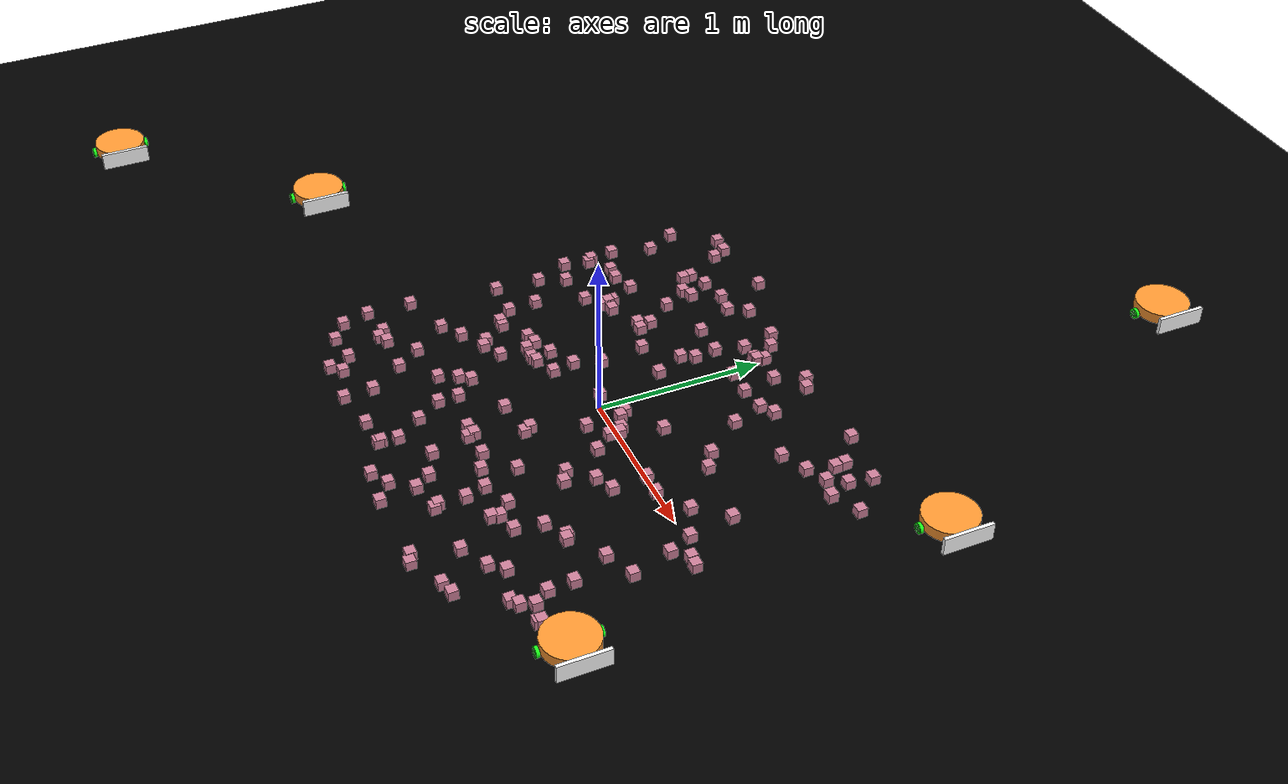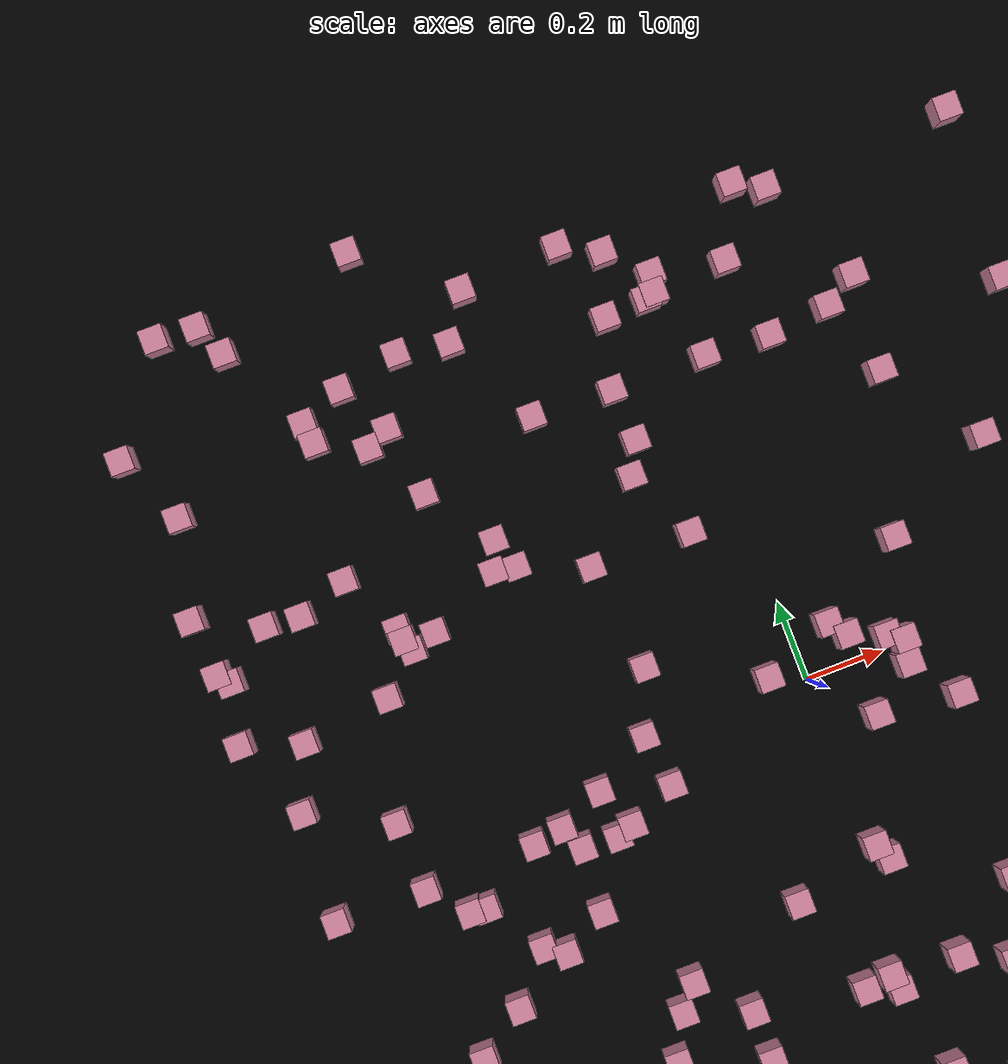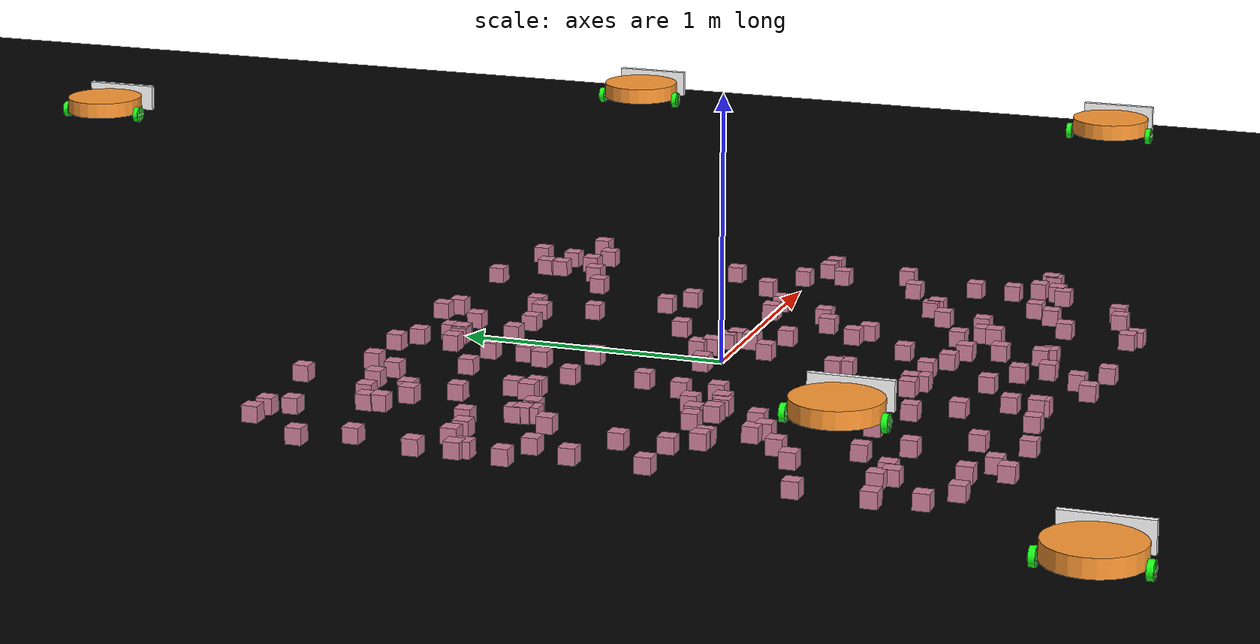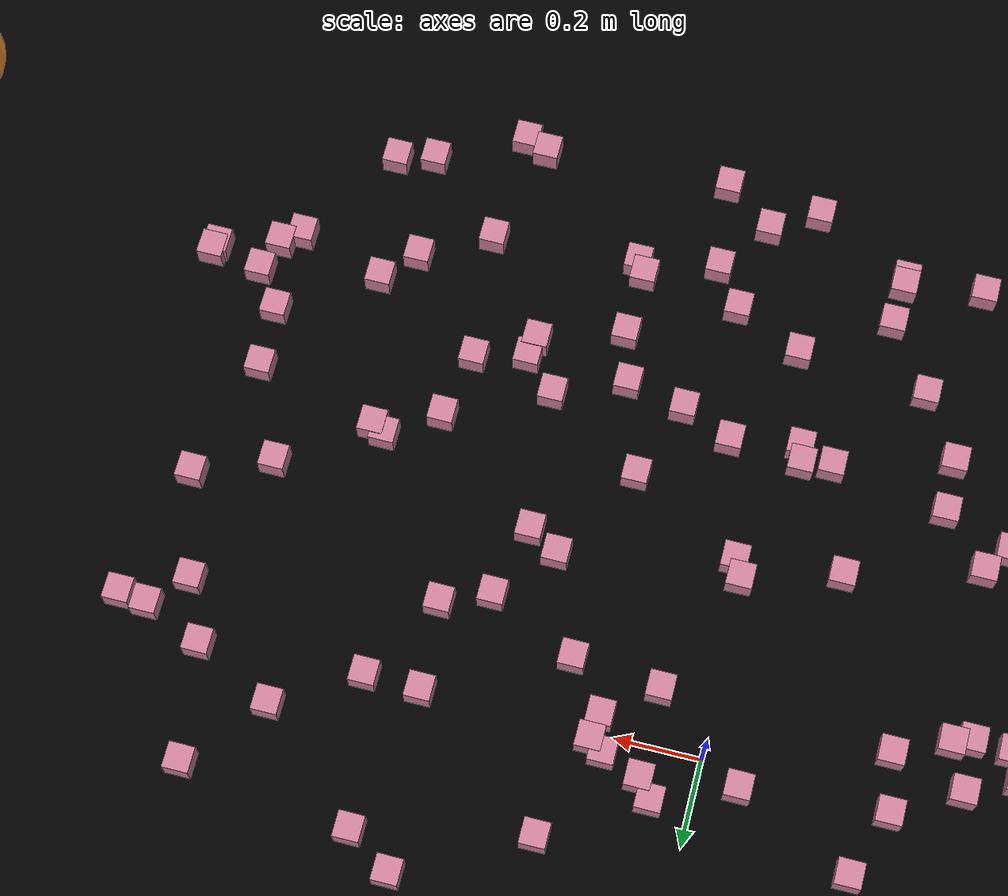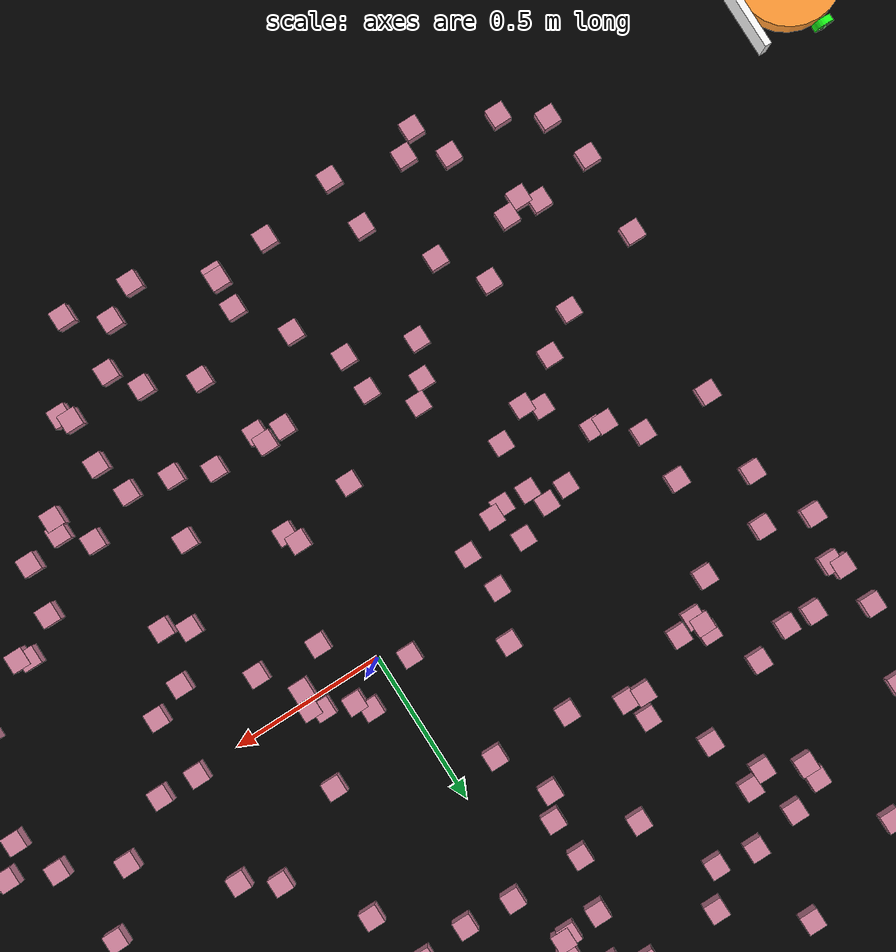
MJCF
<mujoco>
  <compiler meshdir="asset" texturedir="asset" angle="degree" coordinate="local"/>
  <option timestep="0.002" integrator="implicitfast"/>
  <statistic meansize=".05"/>

  <visual>
    <rgba haze="0.15 0.25 0.35 1"/>
    <quality shadowsize="4096"/>
    <map stiffness="700" shadowscale="0.5" fogstart="1" fogend="15" zfar="40" haze="1"/>
  </visual>

  <asset>
    <texture type="skybox" builtin="gradient" rgb1="0.3 0.5 0.7" rgb2="0 0 0" width="512" height="512"/>
    <texture name="texplane" type="2d" builtin="checker" rgb1="0 0 0" rgb2="0 0 0"
      width="512" height="512" mark="cross" markrgb=".8 .8 .8"/>

    <material name="matplane" reflectance="0.3" texture="texplane" texrepeat="10 10" texuniform="true"/>
  </asset>

  <default>
        <joint damping=".03" actuatorfrcrange="-0.5 0.5"/>
        <default class="wheel">
            <geom type="cylinder" size=".03 .01" rgba=".1 1 .1 1"/>
        </default>
        <default class="decor">
            <site type="box" rgba=".5 1 .5 1"/>
        </default>
    </default>

  <worldbody>

    <geom name="ground" type="plane" size="0 0 1" pos="0 0 0" quat="1 0 0 0" material="matplane" condim="1"/>
    <camera name="topdown" pos="0 0 6" quat="1 0 0 0"/>

<body name="p0" pos="1.3520758459381326 -0.04732788919101161 0.02401990644072447">
      <freejoint/>
      <geom type="box" size="0.03 0.03 0.03" rgba="0.8 0.5 0.6 1" friction="1.0 0.1 0.001" density="5"/>
</body>

<body name="p1" pos="-1.0469755028753134 1.2376404418347553 0.020262046734766045">
      <freejoint/>
      <geom type="box" size="0.03 0.03 0.03" rgba="0.8 0.5 0.6 1" friction="1.0 0.1 0.001" density="5"/>
</body>

<body name="p2" pos="0.24810336776359265 -1.377615655173521 0.02353353329639257">
      <freejoint/>
      <geom type="box" size="0.03 0.03 0.03" rgba="0.8 0.5 0.6 1" friction="1.0 0.1 0.001" density="5"/>
</body>

<body name="p3" pos="-0.9173659639547928 0.9577626226314799 0.02214945081027335">
      <freejoint/>
      <geom type="box" size="0.03 0.03 0.03" rgba="0.8 0.5 0.6 1" friction="1.0 0.1 0.001" density="5"/>
</body>

<body name="p4" pos="-0.7395138648239454 0.9288100893753177 0.022707890279324128">
      <freejoint/>
      <geom type="box" size="0.03 0.03 0.03" rgba="0.8 0.5 0.6 1" friction="1.0 0.1 0.001" density="5"/>
</body>

<body name="p5" pos="0.9319787653827394 0.8215369493460822 0.020507355073907562">
      <freejoint/>
      <geom type="box" size="0.03 0.03 0.03" rgba="0.8 0.5 0.6 1" friction="1.0 0.1 0.001" density="5"/>
</body>

<body name="p6" pos="0.7061131691423372 0.3415651235299839 0.02305474138545338">
      <freejoint/>
      <geom type="box" size="0.03 0.03 0.03" rgba="0.8 0.5 0.6 1" friction="1.0 0.1 0.001" density="5"/>
</body>

<body name="p7" pos="-0.6185077746938189 -0.747140996695655 0.020580576578912765">
      <freejoint/>
      <geom type="box" size="0.03 0.03 0.03" rgba="0.8 0.5 0.6 1" friction="1.0 0.1 0.001" density="5"/>
</body>

<body name="p8" pos="-0.21313981672049653 -0.49042070442456376 0.020534954985252655">
      <freejoint/>
      <geom type="box" size="0.03 0.03 0.03" rgba="0.8 0.5 0.6 1" friction="1.0 0.1 0.001" density="5"/>
</body>

<body name="p9" pos="0.15825335436490207 -1.0712547916193556 0.023139859429951448">
      <freejoint/>
      <geom type="box" size="0.03 0.03 0.03" rgba="0.8 0.5 0.6 1" friction="1.0 0.1 0.001" density="5"/>
</body>

<body name="p10" pos="-1.0483665875260182 -0.9136392935586979 0.02246640821833365">
      <freejoint/>
      <geom type="box" size="0.03 0.03 0.03" rgba="0.8 0.5 0.6 1" friction="1.0 0.1 0.001" density="5"/>
</body>

<body name="p11" pos="1.2036290807711434 -0.6564455190728428 0.021719298448065166">
      <freejoint/>
      <geom type="box" size="0.03 0.03 0.03" rgba="0.8 0.5 0.6 1" friction="1.0 0.1 0.001" density="5"/>
</body>

<body name="p12" pos="0.6397715625954148 0.0028545832510993296 0.02363661840180097">
      <freejoint/>
      <geom type="box" size="0.03 0.03 0.03" rgba="0.8 0.5 0.6 1" friction="1.0 0.1 0.001" density="5"/>
</body>

<body name="p13" pos="-0.04423531817942106 1.0032399466795434 0.020939361116398634">
      <freejoint/>
      <geom type="box" size="0.03 0.03 0.03" rgba="0.8 0.5 0.6 1" friction="1.0 0.1 0.001" density="5"/>
</body>

<body name="p14" pos="-1.1920480923883126 0.2882915175495875 0.021220947014544675">
      <freejoint/>
      <geom type="box" size="0.03 0.03 0.03" rgba="0.8 0.5 0.6 1" friction="1.0 0.1 0.001" density="5"/>
</body>

<body name="p15" pos="-0.055559819957493595 -0.7695382141904548 0.02044790825336219">
      <freejoint/>
      <geom type="box" size="0.03 0.03 0.03" rgba="0.8 0.5 0.6 1" friction="1.0 0.1 0.001" density="5"/>
</body>

<body name="p16" pos="-0.7984774638238574 0.8997788354015741 0.022737137488453938">
      <freejoint/>
      <geom type="box" size="0.03 0.03 0.03" rgba="0.8 0.5 0.6 1" friction="1.0 0.1 0.001" density="5"/>
</body>

<body name="p17" pos="-1.1080199780844169 -0.9440669967291945 0.020615308918786688">
      <freejoint/>
      <geom type="box" size="0.03 0.03 0.03" rgba="0.8 0.5 0.6 1" friction="1.0 0.1 0.001" density="5"/>
</body>

<body name="p18" pos="1.054165920389499 0.8771192869608928 0.024457687650487503">
      <freejoint/>
      <geom type="box" size="0.03 0.03 0.03" rgba="0.8 0.5 0.6 1" friction="1.0 0.1 0.001" density="5"/>
</body>

<body name="p19" pos="-0.8824567497988541 -1.2355105333319016 0.0248697113360095">
      <freejoint/>
      <geom type="box" size="0.03 0.03 0.03" rgba="0.8 0.5 0.6 1" friction="1.0 0.1 0.001" density="5"/>
</body>

<body name="p20" pos="1.2011910666815617 -1.00430619791252 0.022877280182495074">
      <freejoint/>
      <geom type="box" size="0.03 0.03 0.03" rgba="0.8 0.5 0.6 1" friction="1.0 0.1 0.001" density="5"/>
</body>

<body name="p21" pos="0.9932836443759085 -0.9404865469599772 0.023180388965646455">
      <freejoint/>
      <geom type="box" size="0.03 0.03 0.03" rgba="0.8 0.5 0.6 1" friction="1.0 0.1 0.001" density="5"/>
</body>

<body name="p22" pos="-0.6816214189922116 1.3602498535146208 0.022482689774057756">
      <freejoint/>
      <geom type="box" size="0.03 0.03 0.03" rgba="0.8 0.5 0.6 1" friction="1.0 0.1 0.001" density="5"/>
</body>

<body name="p23" pos="-0.19894505899537385 0.8248890996604814 0.024665362428502317">
      <freejoint/>
      <geom type="box" size="0.03 0.03 0.03" rgba="0.8 0.5 0.6 1" friction="1.0 0.1 0.001" density="5"/>
</body>

<body name="p24" pos="-0.8821818220999567 0.43689668903819623 0.021911887921835335">
      <freejoint/>
      <geom type="box" size="0.03 0.03 0.03" rgba="0.8 0.5 0.6 1" friction="1.0 0.1 0.001" density="5"/>
</body>

<body name="p25" pos="-0.9210588663763054 -0.23665480592829558 0.02202256553155752">
      <freejoint/>
      <geom type="box" size="0.03 0.03 0.03" rgba="0.8 0.5 0.6 1" friction="1.0 0.1 0.001" density="5"/>
</body>

<body name="p26" pos="0.4963954404482931 -0.4217740387062733 0.021454625672279907">
      <freejoint/>
      <geom type="box" size="0.03 0.03 0.03" rgba="0.8 0.5 0.6 1" friction="1.0 0.1 0.001" density="5"/>
</body>

<body name="p27" pos="1.0365956884315528 -1.2529913603416973 0.023896873568899135">
      <freejoint/>
      <geom type="box" size="0.03 0.03 0.03" rgba="0.8 0.5 0.6 1" friction="1.0 0.1 0.001" density="5"/>
</body>

<body name="p28" pos="-0.003130758951481738 -0.9970254663523004 0.0244352796927887">
      <freejoint/>
      <geom type="box" size="0.03 0.03 0.03" rgba="0.8 0.5 0.6 1" friction="1.0 0.1 0.001" density="5"/>
</body>

<body name="p29" pos="0.10576403592076722 -0.7447165690392866 0.0234821562287058">
      <freejoint/>
      <geom type="box" size="0.03 0.03 0.03" rgba="0.8 0.5 0.6 1" friction="1.0 0.1 0.001" density="5"/>
</body>

<body name="p30" pos="1.1060144154238665 0.2884439982935203 0.02466292541224984">
      <freejoint/>
      <geom type="box" size="0.03 0.03 0.03" rgba="0.8 0.5 0.6 1" friction="1.0 0.1 0.001" density="5"/>
</body>

<body name="p31" pos="0.606175506084552 -0.8310580227211694 0.02069170600942174">
      <freejoint/>
      <geom type="box" size="0.03 0.03 0.03" rgba="0.8 0.5 0.6 1" friction="1.0 0.1 0.001" density="5"/>
</body>

<body name="p32" pos="-0.5656274180453253 -0.1872367681968803 0.02154448332988449">
      <freejoint/>
      <geom type="box" size="0.03 0.03 0.03" rgba="0.8 0.5 0.6 1" friction="1.0 0.1 0.001" density="5"/>
</body>

<body name="p33" pos="0.8793502370659532 -0.5620555093596681 0.020950944790977193">
      <freejoint/>
      <geom type="box" size="0.03 0.03 0.03" rgba="0.8 0.5 0.6 1" friction="1.0 0.1 0.001" density="5"/>
</body>

<body name="p34" pos="-0.14259041926600324 0.43793649888824193 0.024278312861324314">
      <freejoint/>
      <geom type="box" size="0.03 0.03 0.03" rgba="0.8 0.5 0.6 1" friction="1.0 0.1 0.001" density="5"/>
</body>

<body name="p35" pos="0.9750261852319855 0.9773605224599717 0.020090969261094434">
      <freejoint/>
      <geom type="box" size="0.03 0.03 0.03" rgba="0.8 0.5 0.6 1" friction="1.0 0.1 0.001" density="5"/>
</body>

<body name="p36" pos="-0.6209734082804605 0.5164857216529104 0.023137436501803485">
      <freejoint/>
      <geom type="box" size="0.03 0.03 0.03" rgba="0.8 0.5 0.6 1" friction="1.0 0.1 0.001" density="5"/>
</body>

<body name="p37" pos="-0.40536154521731216 -0.8196853764375884 0.023301483585067877">
      <freejoint/>
      <geom type="box" size="0.03 0.03 0.03" rgba="0.8 0.5 0.6 1" friction="1.0 0.1 0.001" density="5"/>
</body>

<body name="p38" pos="0.9481024556060653 -1.2766314752689023 0.020751224053919614">
      <freejoint/>
      <geom type="box" size="0.03 0.03 0.03" rgba="0.8 0.5 0.6 1" friction="1.0 0.1 0.001" density="5"/>
</body>

<body name="p39" pos="-0.6838095571340841 -0.12035038317909175 0.02496987856289289">
      <freejoint/>
      <geom type="box" size="0.03 0.03 0.03" rgba="0.8 0.5 0.6 1" friction="1.0 0.1 0.001" density="5"/>
</body>

<body name="p40" pos="-0.9242193730819828 1.0112975018874182 0.02024521249937858">
      <freejoint/>
      <geom type="box" size="0.03 0.03 0.03" rgba="0.8 0.5 0.6 1" friction="1.0 0.1 0.001" density="5"/>
</body>

<body name="p41" pos="-0.6641345619235632 -0.34434783905270705 0.02100997034461025">
      <freejoint/>
      <geom type="box" size="0.03 0.03 0.03" rgba="0.8 0.5 0.6 1" friction="1.0 0.1 0.001" density="5"/>
</body>

<body name="p42" pos="0.39227287006044564 -1.1011212966957817 0.02201242134206593">
      <freejoint/>
      <geom type="box" size="0.03 0.03 0.03" rgba="0.8 0.5 0.6 1" friction="1.0 0.1 0.001" density="5"/>
</body>

<body name="p43" pos="0.2242903048868632 -1.1648918337266023 0.023548715285064345">
      <freejoint/>
      <geom type="box" size="0.03 0.03 0.03" rgba="0.8 0.5 0.6 1" friction="1.0 0.1 0.001" density="5"/>
</body>

<body name="p44" pos="-1.1837858328109043 0.5858894606696856 0.02122710493879327">
      <freejoint/>
      <geom type="box" size="0.03 0.03 0.03" rgba="0.8 0.5 0.6 1" friction="1.0 0.1 0.001" density="5"/>
</body>

<body name="p45" pos="-0.8139842746913766 1.057823604432615 0.020999668298464117">
      <freejoint/>
      <geom type="box" size="0.03 0.03 0.03" rgba="0.8 0.5 0.6 1" friction="1.0 0.1 0.001" density="5"/>
</body>

<body name="p46" pos="-0.5265093782666651 1.0694702554694775 0.020422858572196178">
      <freejoint/>
      <geom type="box" size="0.03 0.03 0.03" rgba="0.8 0.5 0.6 1" friction="1.0 0.1 0.001" density="5"/>
</body>

<body name="p47" pos="0.3299150210521806 -0.15342332902348654 0.022936225239283504">
      <freejoint/>
      <geom type="box" size="0.03 0.03 0.03" rgba="0.8 0.5 0.6 1" friction="1.0 0.1 0.001" density="5"/>
</body>

<body name="p48" pos="0.36048818044044495 0.8337901717167564 0.021614144506520053">
      <freejoint/>
      <geom type="box" size="0.03 0.03 0.03" rgba="0.8 0.5 0.6 1" friction="1.0 0.1 0.001" density="5"/>
</body>

<body name="p49" pos="-1.2868235652896591 0.9039058230271655 0.020163622517139032">
      <freejoint/>
      <geom type="box" size="0.03 0.03 0.03" rgba="0.8 0.5 0.6 1" friction="1.0 0.1 0.001" density="5"/>
</body>

<body name="p50" pos="-1.0536290781347246 -0.5747633467565274 0.0227200808716578">
      <freejoint/>
      <geom type="box" size="0.03 0.03 0.03" rgba="0.8 0.5 0.6 1" friction="1.0 0.1 0.001" density="5"/>
</body>

<body name="p51" pos="0.7285172112964271 -0.8004392526450885 0.022735382461005628">
      <freejoint/>
      <geom type="box" size="0.03 0.03 0.03" rgba="0.8 0.5 0.6 1" friction="1.0 0.1 0.001" density="5"/>
</body>

<body name="p52" pos="-0.3965318084065288 0.4424872746224757 0.02285898099228139">
      <freejoint/>
      <geom type="box" size="0.03 0.03 0.03" rgba="0.8 0.5 0.6 1" friction="1.0 0.1 0.001" density="5"/>
</body>

<body name="p53" pos="-1.1561608935507013 -0.9028966479067895 0.020236364333591796">
      <freejoint/>
      <geom type="box" size="0.03 0.03 0.03" rgba="0.8 0.5 0.6 1" friction="1.0 0.1 0.001" density="5"/>
</body>

<body name="p54" pos="0.9571728956281245 0.11517046297729294 0.02164627725848612">
      <freejoint/>
      <geom type="box" size="0.03 0.03 0.03" rgba="0.8 0.5 0.6 1" friction="1.0 0.1 0.001" density="5"/>
</body>

<body name="p55" pos="0.16685911543917364 1.0231290415579193 0.020133561253097742">
      <freejoint/>
      <geom type="box" size="0.03 0.03 0.03" rgba="0.8 0.5 0.6 1" friction="1.0 0.1 0.001" density="5"/>
</body>

<body name="p56" pos="-1.3319897391342472 0.5155442122991989 0.024329864692093046">
      <freejoint/>
      <geom type="box" size="0.03 0.03 0.03" rgba="0.8 0.5 0.6 1" friction="1.0 0.1 0.001" density="5"/>
</body>

<body name="p57" pos="0.7778276607999217 0.7506587241022569 0.021153491997115383">
      <freejoint/>
      <geom type="box" size="0.03 0.03 0.03" rgba="0.8 0.5 0.6 1" friction="1.0 0.1 0.001" density="5"/>
</body>

<body name="p58" pos="-0.01251392287838371 1.0551081930196116 0.021179659932213244">
      <freejoint/>
      <geom type="box" size="0.03 0.03 0.03" rgba="0.8 0.5 0.6 1" friction="1.0 0.1 0.001" density="5"/>
</body>

<body name="p59" pos="-1.3414940016142203 -0.6706092130829373 0.02385113844661847">
      <freejoint/>
      <geom type="box" size="0.03 0.03 0.03" rgba="0.8 0.5 0.6 1" friction="1.0 0.1 0.001" density="5"/>
</body>

<body name="p60" pos="-0.1881242827291123 0.6924143688401005 0.02050225099126551">
      <freejoint/>
      <geom type="box" size="0.03 0.03 0.03" rgba="0.8 0.5 0.6 1" friction="1.0 0.1 0.001" density="5"/>
</body>

<body name="p61" pos="-0.8855262552723723 0.4683045972960449 0.02095350848421523">
      <freejoint/>
      <geom type="box" size="0.03 0.03 0.03" rgba="0.8 0.5 0.6 1" friction="1.0 0.1 0.001" density="5"/>
</body>

<body name="p62" pos="0.4127846816086831 -1.1289118644770615 0.021675425768295238">
      <freejoint/>
      <geom type="box" size="0.03 0.03 0.03" rgba="0.8 0.5 0.6 1" friction="1.0 0.1 0.001" density="5"/>
</body>

<body name="p63" pos="-1.271156112034965 -0.14071168441555337 0.024912756307324327">
      <freejoint/>
      <geom type="box" size="0.03 0.03 0.03" rgba="0.8 0.5 0.6 1" friction="1.0 0.1 0.001" density="5"/>
</body>

<body name="p64" pos="0.02009148310665476 -1.3555910126911423 0.022994678087937846">
      <freejoint/>
      <geom type="box" size="0.03 0.03 0.03" rgba="0.8 0.5 0.6 1" friction="1.0 0.1 0.001" density="5"/>
</body>

<body name="p65" pos="0.12503842399978415 0.07530794104598937 0.023278906193772538">
      <freejoint/>
      <geom type="box" size="0.03 0.03 0.03" rgba="0.8 0.5 0.6 1" friction="1.0 0.1 0.001" density="5"/>
</body>

<body name="p66" pos="0.03046486245297797 -0.4655642353424071 0.021468540155364896">
      <freejoint/>
      <geom type="box" size="0.03 0.03 0.03" rgba="0.8 0.5 0.6 1" friction="1.0 0.1 0.001" density="5"/>
</body>

<body name="p67" pos="0.6917142925093787 -1.357661309593987 0.02429041663855109">
      <freejoint/>
      <geom type="box" size="0.03 0.03 0.03" rgba="0.8 0.5 0.6 1" friction="1.0 0.1 0.001" density="5"/>
</body>

<body name="p68" pos="-0.8041295647464497 0.4291943958762703 0.023011313315112834">
      <freejoint/>
      <geom type="box" size="0.03 0.03 0.03" rgba="0.8 0.5 0.6 1" friction="1.0 0.1 0.001" density="5"/>
</body>

<body name="p69" pos="-0.10448626763358893 1.144862989748988 0.021123613315083813">
      <freejoint/>
      <geom type="box" size="0.03 0.03 0.03" rgba="0.8 0.5 0.6 1" friction="1.0 0.1 0.001" density="5"/>
</body>

<body name="p70" pos="0.4260895234210882 0.6427038927105313 0.020019247346729347">
      <freejoint/>
      <geom type="box" size="0.03 0.03 0.03" rgba="0.8 0.5 0.6 1" friction="1.0 0.1 0.001" density="5"/>
</body>

<body name="p71" pos="-0.2271019126403273 0.6142539175167512 0.021021022302036018">
      <freejoint/>
      <geom type="box" size="0.03 0.03 0.03" rgba="0.8 0.5 0.6 1" friction="1.0 0.1 0.001" density="5"/>
</body>

<body name="p72" pos="-1.366655227674001 1.0807694908832506 0.02417322412062151">
      <freejoint/>
      <geom type="box" size="0.03 0.03 0.03" rgba="0.8 0.5 0.6 1" friction="1.0 0.1 0.001" density="5"/>
</body>

<body name="p73" pos="0.7473077569951894 -1.378742998320895 0.020379409169113894">
      <freejoint/>
      <geom type="box" size="0.03 0.03 0.03" rgba="0.8 0.5 0.6 1" friction="1.0 0.1 0.001" density="5"/>
</body>

<body name="p74" pos="-1.0944021219327156 0.5781316458751817 0.021525235018107092">
      <freejoint/>
      <geom type="box" size="0.03 0.03 0.03" rgba="0.8 0.5 0.6 1" friction="1.0 0.1 0.001" density="5"/>
</body>

<body name="p75" pos="-0.518592726205364 -0.5789791351966431 0.023546562272350382">
      <freejoint/>
      <geom type="box" size="0.03 0.03 0.03" rgba="0.8 0.5 0.6 1" friction="1.0 0.1 0.001" density="5"/>
</body>

<body name="p76" pos="-0.56721197871398 -0.6383950645644855 0.021511560144293857">
      <freejoint/>
      <geom type="box" size="0.03 0.03 0.03" rgba="0.8 0.5 0.6 1" friction="1.0 0.1 0.001" density="5"/>
</body>

<body name="p77" pos="0.6515004869513557 -0.20435391157452876 0.022562341292128724">
      <freejoint/>
      <geom type="box" size="0.03 0.03 0.03" rgba="0.8 0.5 0.6 1" friction="1.0 0.1 0.001" density="5"/>
</body>

<body name="p78" pos="0.13011448744618703 -1.2921062249364832 0.023553401981857302">
      <freejoint/>
      <geom type="box" size="0.03 0.03 0.03" rgba="0.8 0.5 0.6 1" friction="1.0 0.1 0.001" density="5"/>
</body>

<body name="p79" pos="-1.0848290675229224 1.3187748956844145 0.022267054387113436">
      <freejoint/>
      <geom type="box" size="0.03 0.03 0.03" rgba="0.8 0.5 0.6 1" friction="1.0 0.1 0.001" density="5"/>
</body>

<body name="p80" pos="-0.8700185423520083 0.4075287754853558 0.020642299205081274">
      <freejoint/>
      <geom type="box" size="0.03 0.03 0.03" rgba="0.8 0.5 0.6 1" friction="1.0 0.1 0.001" density="5"/>
</body>

<body name="p81" pos="-0.7776830288642768 -0.40655731117548943 0.021311149717743217">
      <freejoint/>
      <geom type="box" size="0.03 0.03 0.03" rgba="0.8 0.5 0.6 1" friction="1.0 0.1 0.001" density="5"/>
</body>

<body name="p82" pos="0.5398846522123826 -0.25133273753918495 0.022455409340185778">
      <freejoint/>
      <geom type="box" size="0.03 0.03 0.03" rgba="0.8 0.5 0.6 1" friction="1.0 0.1 0.001" density="5"/>
</body>

<body name="p83" pos="0.24501968341831093 1.1908456439070871 0.023025583996417614">
      <freejoint/>
      <geom type="box" size="0.03 0.03 0.03" rgba="0.8 0.5 0.6 1" friction="1.0 0.1 0.001" density="5"/>
</body>

<body name="p84" pos="-0.20141690885832952 -1.1255219651968653 0.02085980371788335">
      <freejoint/>
      <geom type="box" size="0.03 0.03 0.03" rgba="0.8 0.5 0.6 1" friction="1.0 0.1 0.001" density="5"/>
</body>

<body name="p85" pos="0.9204127437123524 -1.0193914147367193 0.022679290604765236">
      <freejoint/>
      <geom type="box" size="0.03 0.03 0.03" rgba="0.8 0.5 0.6 1" friction="1.0 0.1 0.001" density="5"/>
</body>

<body name="p86" pos="0.759439190885514 -1.1072235374169639 0.023970098366760152">
      <freejoint/>
      <geom type="box" size="0.03 0.03 0.03" rgba="0.8 0.5 0.6 1" friction="1.0 0.1 0.001" density="5"/>
</body>

<body name="p87" pos="-1.189641717524989 -1.1882748061421373 0.020326298595288245">
      <freejoint/>
      <geom type="box" size="0.03 0.03 0.03" rgba="0.8 0.5 0.6 1" friction="1.0 0.1 0.001" density="5"/>
</body>

<body name="p88" pos="-0.42066011894181166 0.016291935249831413 0.022746104883576927">
      <freejoint/>
      <geom type="box" size="0.03 0.03 0.03" rgba="0.8 0.5 0.6 1" friction="1.0 0.1 0.001" density="5"/>
</body>

<body name="p89" pos="-1.3130599641589058 -1.1008235294944821 0.022051006822056046">
      <freejoint/>
      <geom type="box" size="0.03 0.03 0.03" rgba="0.8 0.5 0.6 1" friction="1.0 0.1 0.001" density="5"/>
</body>

<body name="p90" pos="-0.2079978217598355 -1.2409069323205941 0.023844034801585076">
      <freejoint/>
      <geom type="box" size="0.03 0.03 0.03" rgba="0.8 0.5 0.6 1" friction="1.0 0.1 0.001" density="5"/>
</body>

<body name="p91" pos="-1.0007526437942538 -1.1656236346026618 0.023187338216808538">
      <freejoint/>
      <geom type="box" size="0.03 0.03 0.03" rgba="0.8 0.5 0.6 1" friction="1.0 0.1 0.001" density="5"/>
</body>

<body name="p92" pos="-0.9615122298993648 -0.23240386562167026 0.023744577760981832">
      <freejoint/>
      <geom type="box" size="0.03 0.03 0.03" rgba="0.8 0.5 0.6 1" friction="1.0 0.1 0.001" density="5"/>
</body>

<body name="p93" pos="-0.9665589633928799 0.6219620288928072 0.020240108105565754">
      <freejoint/>
      <geom type="box" size="0.03 0.03 0.03" rgba="0.8 0.5 0.6 1" friction="1.0 0.1 0.001" density="5"/>
</body>

<body name="p94" pos="-1.2570404467586982 0.13225491098973396 0.022338040379590324">
      <freejoint/>
      <geom type="box" size="0.03 0.03 0.03" rgba="0.8 0.5 0.6 1" friction="1.0 0.1 0.001" density="5"/>
</body>

<body name="p95" pos="-0.3999313865572731 -0.11704081699148006 0.020570700765939656">
      <freejoint/>
      <geom type="box" size="0.03 0.03 0.03" rgba="0.8 0.5 0.6 1" friction="1.0 0.1 0.001" density="5"/>
</body>

<body name="p96" pos="0.7609712620020987 -0.6413363169866992 0.02477400663439214">
      <freejoint/>
      <geom type="box" size="0.03 0.03 0.03" rgba="0.8 0.5 0.6 1" friction="1.0 0.1 0.001" density="5"/>
</body>

<body name="p97" pos="0.5967406300864093 -0.8780137236006988 0.023396838644315392">
      <freejoint/>
      <geom type="box" size="0.03 0.03 0.03" rgba="0.8 0.5 0.6 1" friction="1.0 0.1 0.001" density="5"/>
</body>

<body name="p98" pos="-0.9474664920104128 -1.2944173455354586 0.022118109271533765">
      <freejoint/>
      <geom type="box" size="0.03 0.03 0.03" rgba="0.8 0.5 0.6 1" friction="1.0 0.1 0.001" density="5"/>
</body>

<body name="p99" pos="-1.308609156162489 0.4885067194401267 0.022642286689122756">
      <freejoint/>
      <geom type="box" size="0.03 0.03 0.03" rgba="0.8 0.5 0.6 1" friction="1.0 0.1 0.001" density="5"/>
</body>

<body name="p100" pos="-0.5225618585044711 -0.17249218436961522 0.023645260046423408">
      <freejoint/>
      <geom type="box" size="0.03 0.03 0.03" rgba="0.8 0.5 0.6 1" friction="1.0 0.1 0.001" density="5"/>
</body>

<body name="p101" pos="-0.3110521847592562 -0.9686377358775896 0.020286861723029643">
      <freejoint/>
      <geom type="box" size="0.03 0.03 0.03" rgba="0.8 0.5 0.6 1" friction="1.0 0.1 0.001" density="5"/>
</body>

<body name="p102" pos="-0.7115387727835089 0.7497620010935422 0.02307488557506323">
      <freejoint/>
      <geom type="box" size="0.03 0.03 0.03" rgba="0.8 0.5 0.6 1" friction="1.0 0.1 0.001" density="5"/>
</body>

<body name="p103" pos="-1.1883272715624118 1.3259222330916223 0.023718873798714894">
      <freejoint/>
      <geom type="box" size="0.03 0.03 0.03" rgba="0.8 0.5 0.6 1" friction="1.0 0.1 0.001" density="5"/>
</body>

<body name="p104" pos="-0.20229293326332742 1.1974581558669692 0.02192684701232126">
      <freejoint/>
      <geom type="box" size="0.03 0.03 0.03" rgba="0.8 0.5 0.6 1" friction="1.0 0.1 0.001" density="5"/>
</body>

<body name="p105" pos="-0.5647622599893155 0.5077691669266753 0.021452841817855253">
      <freejoint/>
      <geom type="box" size="0.03 0.03 0.03" rgba="0.8 0.5 0.6 1" friction="1.0 0.1 0.001" density="5"/>
</body>

<body name="p106" pos="0.009428058856914001 -0.4242234679322051 0.024105361458973747">
      <freejoint/>
      <geom type="box" size="0.03 0.03 0.03" rgba="0.8 0.5 0.6 1" friction="1.0 0.1 0.001" density="5"/>
</body>

<body name="p107" pos="-1.0521724935907468 0.02993662425650001 0.024662501419342068">
      <freejoint/>
      <geom type="box" size="0.03 0.03 0.03" rgba="0.8 0.5 0.6 1" friction="1.0 0.1 0.001" density="5"/>
</body>

<body name="p108" pos="0.040860015168888486 0.8259134074538008 0.022945727521165464">
      <freejoint/>
      <geom type="box" size="0.03 0.03 0.03" rgba="0.8 0.5 0.6 1" friction="1.0 0.1 0.001" density="5"/>
</body>

<body name="p109" pos="1.2101858950769806 -0.8040649865477275 0.02130559935314895">
      <freejoint/>
      <geom type="box" size="0.03 0.03 0.03" rgba="0.8 0.5 0.6 1" friction="1.0 0.1 0.001" density="5"/>
</body>

<body name="p110" pos="-0.9660364826663722 0.32050497296920355 0.023781553900809382">
      <freejoint/>
      <geom type="box" size="0.03 0.03 0.03" rgba="0.8 0.5 0.6 1" friction="1.0 0.1 0.001" density="5"/>
</body>

<body name="p111" pos="1.3955096859401972 -0.9110622552972465 0.023987516212787285">
      <freejoint/>
      <geom type="box" size="0.03 0.03 0.03" rgba="0.8 0.5 0.6 1" friction="1.0 0.1 0.001" density="5"/>
</body>

<body name="p112" pos="0.31878050623906695 1.1539777899685548 0.021496841412417513">
      <freejoint/>
      <geom type="box" size="0.03 0.03 0.03" rgba="0.8 0.5 0.6 1" friction="1.0 0.1 0.001" density="5"/>
</body>

<body name="p113" pos="-1.3514975664654676 -0.9374492175996205 0.02347429145836582">
      <freejoint/>
      <geom type="box" size="0.03 0.03 0.03" rgba="0.8 0.5 0.6 1" friction="1.0 0.1 0.001" density="5"/>
</body>

<body name="p114" pos="0.12462299255988185 -0.13135217391242526 0.02442362363134433">
      <freejoint/>
      <geom type="box" size="0.03 0.03 0.03" rgba="0.8 0.5 0.6 1" friction="1.0 0.1 0.001" density="5"/>
</body>

<body name="p115" pos="-0.8263558536647377 -0.3738176728055813 0.021184171173878354">
      <freejoint/>
      <geom type="box" size="0.03 0.03 0.03" rgba="0.8 0.5 0.6 1" friction="1.0 0.1 0.001" density="5"/>
</body>

<body name="p116" pos="-0.930609405628017 -0.49082351712379124 0.022370151666929933">
      <freejoint/>
      <geom type="box" size="0.03 0.03 0.03" rgba="0.8 0.5 0.6 1" friction="1.0 0.1 0.001" density="5"/>
</body>

<body name="p117" pos="0.09157397796074163 0.11725861715772656 0.020555227151642375">
      <freejoint/>
      <geom type="box" size="0.03 0.03 0.03" rgba="0.8 0.5 0.6 1" friction="1.0 0.1 0.001" density="5"/>
</body>

<body name="p118" pos="-0.5682100065258002 -0.06920284769754725 0.023765090029639547">
      <freejoint/>
      <geom type="box" size="0.03 0.03 0.03" rgba="0.8 0.5 0.6 1" friction="1.0 0.1 0.001" density="5"/>
</body>

<body name="p119" pos="0.24959861727809374 0.017352521361159834 0.02295719956468112">
      <freejoint/>
      <geom type="box" size="0.03 0.03 0.03" rgba="0.8 0.5 0.6 1" friction="1.0 0.1 0.001" density="5"/>
</body>

<body name="p120" pos="0.31338512999727475 0.25575350219173676 0.02261531295954236">
      <freejoint/>
      <geom type="box" size="0.03 0.03 0.03" rgba="0.8 0.5 0.6 1" friction="1.0 0.1 0.001" density="5"/>
</body>

<body name="p121" pos="-0.13542214100632588 -0.7407435569742824 0.021650695017150407">
      <freejoint/>
      <geom type="box" size="0.03 0.03 0.03" rgba="0.8 0.5 0.6 1" friction="1.0 0.1 0.001" density="5"/>
</body>

<body name="p122" pos="0.2945383518605609 -0.6104600472962537 0.020763941963766203">
      <freejoint/>
      <geom type="box" size="0.03 0.03 0.03" rgba="0.8 0.5 0.6 1" friction="1.0 0.1 0.001" density="5"/>
</body>

<body name="p123" pos="0.3651320002100109 -0.825438320345119 0.02219151587108501">
      <freejoint/>
      <geom type="box" size="0.03 0.03 0.03" rgba="0.8 0.5 0.6 1" friction="1.0 0.1 0.001" density="5"/>
</body>

<body name="p124" pos="1.273330517445586 -0.892693949176167 0.02235498317958426">
      <freejoint/>
      <geom type="box" size="0.03 0.03 0.03" rgba="0.8 0.5 0.6 1" friction="1.0 0.1 0.001" density="5"/>
</body>

<body name="p125" pos="0.20422689625863022 0.8162213470010418 0.020125807002060316">
      <freejoint/>
      <geom type="box" size="0.03 0.03 0.03" rgba="0.8 0.5 0.6 1" friction="1.0 0.1 0.001" density="5"/>
</body>

<body name="p126" pos="0.4427263235682335 0.8824054631257168 0.021955861886548612">
      <freejoint/>
      <geom type="box" size="0.03 0.03 0.03" rgba="0.8 0.5 0.6 1" friction="1.0 0.1 0.001" density="5"/>
</body>

<body name="p127" pos="1.1046533902660047 -0.43646533229911755 0.024314421536604243">
      <freejoint/>
      <geom type="box" size="0.03 0.03 0.03" rgba="0.8 0.5 0.6 1" friction="1.0 0.1 0.001" density="5"/>
</body>

<body name="p128" pos="0.9714193308595798 1.0397612838970534 0.021103020484562113">
      <freejoint/>
      <geom type="box" size="0.03 0.03 0.03" rgba="0.8 0.5 0.6 1" friction="1.0 0.1 0.001" density="5"/>
</body>

<body name="p129" pos="-0.6557716352705206 1.0904186931913817 0.021782373535050376">
      <freejoint/>
      <geom type="box" size="0.03 0.03 0.03" rgba="0.8 0.5 0.6 1" friction="1.0 0.1 0.001" density="5"/>
</body>

<body name="p130" pos="0.2254909210297873 -0.7954838254027086 0.02431486384665505">
      <freejoint/>
      <geom type="box" size="0.03 0.03 0.03" rgba="0.8 0.5 0.6 1" friction="1.0 0.1 0.001" density="5"/>
</body>

<body name="p131" pos="1.1722395485162314 0.8438576953461108 0.02260510678979915">
      <freejoint/>
      <geom type="box" size="0.03 0.03 0.03" rgba="0.8 0.5 0.6 1" friction="1.0 0.1 0.001" density="5"/>
</body>

<body name="p132" pos="-0.6610672926803416 -1.1247297761470247 0.02464880379100251">
      <freejoint/>
      <geom type="box" size="0.03 0.03 0.03" rgba="0.8 0.5 0.6 1" friction="1.0 0.1 0.001" density="5"/>
</body>

<body name="p133" pos="1.3893794414913567 -0.9272394708041956 0.02133813837640944">
      <freejoint/>
      <geom type="box" size="0.03 0.03 0.03" rgba="0.8 0.5 0.6 1" friction="1.0 0.1 0.001" density="5"/>
</body>

<body name="p134" pos="-1.3414038050656243 0.33882049024728134 0.023628148180498822">
      <freejoint/>
      <geom type="box" size="0.03 0.03 0.03" rgba="0.8 0.5 0.6 1" friction="1.0 0.1 0.001" density="5"/>
</body>

<body name="p135" pos="0.5287358525080694 -0.7558868837831735 0.022122309030149973">
      <freejoint/>
      <geom type="box" size="0.03 0.03 0.03" rgba="0.8 0.5 0.6 1" friction="1.0 0.1 0.001" density="5"/>
</body>

<body name="p136" pos="-0.09030270139118435 0.04340074769965829 0.024560010942226387">
      <freejoint/>
      <geom type="box" size="0.03 0.03 0.03" rgba="0.8 0.5 0.6 1" friction="1.0 0.1 0.001" density="5"/>
</body>

<body name="p137" pos="0.39885413961403526 -0.9459966714573873 0.023209687017938557">
      <freejoint/>
      <geom type="box" size="0.03 0.03 0.03" rgba="0.8 0.5 0.6 1" friction="1.0 0.1 0.001" density="5"/>
</body>

<body name="p138" pos="0.7682728103899983 -0.001285927370551887 0.021855936212892623">
      <freejoint/>
      <geom type="box" size="0.03 0.03 0.03" rgba="0.8 0.5 0.6 1" friction="1.0 0.1 0.001" density="5"/>
</body>

<body name="p139" pos="-0.6545269383069996 -0.18267567027271414 0.023401499851781457">
      <freejoint/>
      <geom type="box" size="0.03 0.03 0.03" rgba="0.8 0.5 0.6 1" friction="1.0 0.1 0.001" density="5"/>
</body>

<body name="p140" pos="0.2150832741399269 0.04023031996907056 0.02001172679149922">
      <freejoint/>
      <geom type="box" size="0.03 0.03 0.03" rgba="0.8 0.5 0.6 1" friction="1.0 0.1 0.001" density="5"/>
</body>

<body name="p141" pos="1.1457533120781194 0.021484474347287952 0.02307869945745534">
      <freejoint/>
      <geom type="box" size="0.03 0.03 0.03" rgba="0.8 0.5 0.6 1" friction="1.0 0.1 0.001" density="5"/>
</body>

<body name="p142" pos="-0.40274417084757486 0.8334464899090506 0.020328560194310955">
      <freejoint/>
      <geom type="box" size="0.03 0.03 0.03" rgba="0.8 0.5 0.6 1" friction="1.0 0.1 0.001" density="5"/>
</body>

<body name="p143" pos="-0.39491696299362933 -1.2517417207084283 0.02170232629220534">
      <freejoint/>
      <geom type="box" size="0.03 0.03 0.03" rgba="0.8 0.5 0.6 1" friction="1.0 0.1 0.001" density="5"/>
</body>

<body name="p144" pos="0.6009092655775232 0.4107558205614694 0.022107370227957085">
      <freejoint/>
      <geom type="box" size="0.03 0.03 0.03" rgba="0.8 0.5 0.6 1" friction="1.0 0.1 0.001" density="5"/>
</body>

<body name="p145" pos="-0.6556427645237378 -1.299019776421508 0.02064728725963128">
      <freejoint/>
      <geom type="box" size="0.03 0.03 0.03" rgba="0.8 0.5 0.6 1" friction="1.0 0.1 0.001" density="5"/>
</body>

<body name="p146" pos="1.1160166785348191 0.9793323406782739 0.020974531046661006">
      <freejoint/>
      <geom type="box" size="0.03 0.03 0.03" rgba="0.8 0.5 0.6 1" friction="1.0 0.1 0.001" density="5"/>
</body>

<body name="p147" pos="-0.4557825254367469 1.179025788235363 0.02373328040859056">
      <freejoint/>
      <geom type="box" size="0.03 0.03 0.03" rgba="0.8 0.5 0.6 1" friction="1.0 0.1 0.001" density="5"/>
</body>

<body name="p148" pos="-0.7604652735033853 -0.13444443603785694 0.02294364817297769">
      <freejoint/>
      <geom type="box" size="0.03 0.03 0.03" rgba="0.8 0.5 0.6 1" friction="1.0 0.1 0.001" density="5"/>
</body>

<body name="p149" pos="-0.3621428933858797 0.17236750045847726 0.024335073768127408">
      <freejoint/>
      <geom type="box" size="0.03 0.03 0.03" rgba="0.8 0.5 0.6 1" friction="1.0 0.1 0.001" density="5"/>
</body>

<body name="p150" pos="-0.20831020871575845 -1.2238265139088738 0.024163705329922944">
      <freejoint/>
      <geom type="box" size="0.03 0.03 0.03" rgba="0.8 0.5 0.6 1" friction="1.0 0.1 0.001" density="5"/>
</body>

<body name="p151" pos="-0.15287272561975773 0.993935752544433 0.024700269096602362">
      <freejoint/>
      <geom type="box" size="0.03 0.03 0.03" rgba="0.8 0.5 0.6 1" friction="1.0 0.1 0.001" density="5"/>
</body>

<body name="p152" pos="1.1399078033605279 1.1168577080544937 0.02308815808416377">
      <freejoint/>
      <geom type="box" size="0.03 0.03 0.03" rgba="0.8 0.5 0.6 1" friction="1.0 0.1 0.001" density="5"/>
</body>

<body name="p153" pos="0.24012747935725165 -0.04195152217098452 0.020967314244378022">
      <freejoint/>
      <geom type="box" size="0.03 0.03 0.03" rgba="0.8 0.5 0.6 1" friction="1.0 0.1 0.001" density="5"/>
</body>

<body name="p154" pos="-0.06583959921202265 -0.729730983735158 0.021571167122150743">
      <freejoint/>
      <geom type="box" size="0.03 0.03 0.03" rgba="0.8 0.5 0.6 1" friction="1.0 0.1 0.001" density="5"/>
</body>

<body name="p155" pos="0.7951165064611532 1.177521979835575 0.02122484431146205">
      <freejoint/>
      <geom type="box" size="0.03 0.03 0.03" rgba="0.8 0.5 0.6 1" friction="1.0 0.1 0.001" density="5"/>
</body>

<body name="p156" pos="-0.7975642405852666 -0.9226436916709615 0.024153297925451542">
      <freejoint/>
      <geom type="box" size="0.03 0.03 0.03" rgba="0.8 0.5 0.6 1" friction="1.0 0.1 0.001" density="5"/>
</body>

<body name="p157" pos="-1.345641267587914 0.66107080709086 0.02421358229479221">
      <freejoint/>
      <geom type="box" size="0.03 0.03 0.03" rgba="0.8 0.5 0.6 1" friction="1.0 0.1 0.001" density="5"/>
</body>

<body name="p158" pos="-0.5930358640104079 0.5863351270170962 0.02120777113700777">
      <freejoint/>
      <geom type="box" size="0.03 0.03 0.03" rgba="0.8 0.5 0.6 1" friction="1.0 0.1 0.001" density="5"/>
</body>

<body name="p159" pos="1.3334374142813972 0.9281392892207481 0.02013441145353418">
      <freejoint/>
      <geom type="box" size="0.03 0.03 0.03" rgba="0.8 0.5 0.6 1" friction="1.0 0.1 0.001" density="5"/>
</body>

<body name="p160" pos="1.2801138104540826 -0.3639303854528735 0.0244388720814616">
      <freejoint/>
      <geom type="box" size="0.03 0.03 0.03" rgba="0.8 0.5 0.6 1" friction="1.0 0.1 0.001" density="5"/>
</body>

<body name="p161" pos="1.2087302749529014 -0.12006490540669668 0.02134814894317735">
      <freejoint/>
      <geom type="box" size="0.03 0.03 0.03" rgba="0.8 0.5 0.6 1" friction="1.0 0.1 0.001" density="5"/>
</body>

<body name="p162" pos="1.244630024010248 -0.9710315481994032 0.024424827862344786">
      <freejoint/>
      <geom type="box" size="0.03 0.03 0.03" rgba="0.8 0.5 0.6 1" friction="1.0 0.1 0.001" density="5"/>
</body>

<body name="p163" pos="0.9098778202214488 -0.5762614729163141 0.023095721228095188">
      <freejoint/>
      <geom type="box" size="0.03 0.03 0.03" rgba="0.8 0.5 0.6 1" friction="1.0 0.1 0.001" density="5"/>
</body>

<body name="p164" pos="-1.0424036138206305 -0.14447211994452736 0.024906466948180953">
      <freejoint/>
      <geom type="box" size="0.03 0.03 0.03" rgba="0.8 0.5 0.6 1" friction="1.0 0.1 0.001" density="5"/>
</body>

<body name="p165" pos="0.42459062572566375 -0.3804893604825248 0.022875241145698708">
      <freejoint/>
      <geom type="box" size="0.03 0.03 0.03" rgba="0.8 0.5 0.6 1" friction="1.0 0.1 0.001" density="5"/>
</body>

<body name="p166" pos="-0.022759530194023325 1.0087884245850152 0.02272594380727255">
      <freejoint/>
      <geom type="box" size="0.03 0.03 0.03" rgba="0.8 0.5 0.6 1" friction="1.0 0.1 0.001" density="5"/>
</body>

<body name="p167" pos="-0.8971833585595899 -0.7777607036164935 0.023487184820223557">
      <freejoint/>
      <geom type="box" size="0.03 0.03 0.03" rgba="0.8 0.5 0.6 1" friction="1.0 0.1 0.001" density="5"/>
</body>

<body name="p168" pos="1.2864502372444808 -0.03890464366125124 0.021060299065041033">
      <freejoint/>
      <geom type="box" size="0.03 0.03 0.03" rgba="0.8 0.5 0.6 1" friction="1.0 0.1 0.001" density="5"/>
</body>

<body name="p169" pos="-0.40865141664519744 -0.6965519865628508 0.021925774371160243">
      <freejoint/>
      <geom type="box" size="0.03 0.03 0.03" rgba="0.8 0.5 0.6 1" friction="1.0 0.1 0.001" density="5"/>
</body>

            <body name="0" pos="2.0 1.0 0.5">

            <freejoint/>
            <geom name="base_0"
                    type="cylinder"
                    pos="0 0 0.03"
                    size="0.15 0.03"
                    rgba="1.0 0.6 0.2 1"/>

            <geom type="box" pos="0.16 0 0.03" size="0.01 0.14 0.05" rgba="1 1 1 1" />

            <geom name="front wheel_0" pos="0.12 0 -.015" type="sphere" size=".015" condim="1" priority="1"/>

            <body name="left wheel_0" pos="-.02 .16 0" zaxis="0 1 0">
            <joint name="left_0"/>
            <geom class="wheel"/>
            <site class="decor" size=".006 .025 .012"/>
            <site class="decor" size=".025 .006 .012"/>
            </body>

            <body name="right wheel_0" pos="-.02 -.16 0" zaxis="0 1 0">
            <joint name="right_0"/>
            <geom class="wheel"/>
            <site class="decor" size=".006 .025 .012"/>
            <site class="decor" size=".025 .006 .012"/>
            </body>

        </body>

            <body name="1" pos="-2.0 -1.0 0.5">

            <freejoint/>
            <geom name="base_1"
                    type="cylinder"
                    pos="0 0 0.03"
                    size="0.15 0.03"
                    rgba="1.0 0.6 0.2 1"/>

            <geom type="box" pos="0.16 0 0.03" size="0.01 0.14 0.05" rgba="1 1 1 1" />

            <geom name="front wheel_1" pos="0.12 0 -.015" type="sphere" size=".015" condim="1" priority="1"/>

            <body name="left wheel_1" pos="-.02 .16 0" zaxis="0 1 0">
            <joint name="left_1"/>
            <geom class="wheel"/>
            <site class="decor" size=".006 .025 .012"/>
            <site class="decor" size=".025 .006 .012"/>
            </body>

            <body name="right wheel_1" pos="-.02 -.16 0" zaxis="0 1 0">
            <joint name="right_1"/>
            <geom class="wheel"/>
            <site class="decor" size=".006 .025 .012"/>
            <site class="decor" size=".025 .006 .012"/>
            </body>

        </body>

            <body name="2" pos="-3.0 -2.0 0.5">

            <freejoint/>
            <geom name="base_2"
                    type="cylinder"
                    pos="0 0 0.03"
                    size="0.15 0.03"
                    rgba="1.0 0.6 0.2 1"/>

            <geom type="box" pos="0.16 0 0.03" size="0.01 0.14 0.05" rgba="1 1 1 1" />

            <geom name="front wheel_2" pos="0.12 0 -.015" type="sphere" size=".015" condim="1" priority="1"/>

            <body name="left wheel_2" pos="-.02 .16 0" zaxis="0 1 0">
            <joint name="left_2"/>
            <geom class="wheel"/>
            <site class="decor" size=".006 .025 .012"/>
            <site class="decor" size=".025 .006 .012"/>
            </body>

            <body name="right wheel_2" pos="-.02 -.16 0" zaxis="0 1 0">
            <joint name="right_2"/>
            <geom class="wheel"/>
            <site class="decor" size=".006 .025 .012"/>
            <site class="decor" size=".025 .006 .012"/>
            </body>

        </body>

            <body name="3" pos="2.0 -1.0 0.5">

            <freejoint/>
            <geom name="base_3"
                    type="cylinder"
                    pos="0 0 0.03"
                    size="0.15 0.03"
                    rgba="1.0 0.6 0.2 1"/>

            <geom type="box" pos="0.16 0 0.03" size="0.01 0.14 0.05" rgba="1 1 1 1" />

            <geom name="front wheel_3" pos="0.12 0 -.015" type="sphere" size=".015" condim="1" priority="1"/>

            <body name="left wheel_3" pos="-.02 .16 0" zaxis="0 1 0">
            <joint name="left_3"/>
            <geom class="wheel"/>
            <site class="decor" size=".006 .025 .012"/>
            <site class="decor" size=".025 .006 .012"/>
            </body>

            <body name="right wheel_3" pos="-.02 -.16 0" zaxis="0 1 0">
            <joint name="right_3"/>
            <geom class="wheel"/>
            <site class="decor" size=".006 .025 .012"/>
            <site class="decor" size=".025 .006 .012"/>
            </body>

        </body>

            <body name="4" pos="1.0 3.0 0.5">

            <freejoint/>
            <geom name="base_4"
                    type="cylinder"
                    pos="0 0 0.03"
                    size="0.15 0.03"
                    rgba="1.0 0.6 0.2 1"/>

            <geom type="box" pos="0.16 0 0.03" size="0.01 0.14 0.05" rgba="1 1 1 1" />

            <geom name="front wheel_4" pos="0.12 0 -.015" type="sphere" size=".015" condim="1" priority="1"/>

            <body name="left wheel_4" pos="-.02 .16 0" zaxis="0 1 0">
            <joint name="left_4"/>
            <geom class="wheel"/>
            <site class="decor" size=".006 .025 .012"/>
            <site class="decor" size=".025 .006 .012"/>
            </body>

            <body name="right wheel_4" pos="-.02 -.16 0" zaxis="0 1 0">
            <joint name="right_4"/>
            <geom class="wheel"/>
            <site class="decor" size=".006 .025 .012"/>
            <site class="decor" size=".025 .006 .012"/>
            </body>

        </body>

  </worldbody>

<tendon>
  <fixed name="forward_0">
    <joint joint="left_0" coef=".5"/>
    <joint joint="right_0" coef=".5"/>
  </fixed>
  <fixed name="turn_0">
    <joint joint="left_0" coef="-.5"/>
    <joint joint="right_0" coef=".5"/>
  </fixed>
</tendon>

<actuator>
  <motor name="forward_0" tendon="forward_0" ctrlrange="-1 1"/>
  <motor name="turn_0" tendon="turn_0" ctrlrange="-1 1"/>
</actuator>

<sensor>
    <jointactuatorfrc name="right_0" joint="right_0"/>
    <jointactuatorfrc name="left_0" joint="left_0"/>
</sensor>

<tendon>
  <fixed name="forward_1">
    <joint joint="left_1" coef=".5"/>
    <joint joint="right_1" coef=".5"/>
  </fixed>
  <fixed name="turn_1">
    <joint joint="left_1" coef="-.5"/>
    <joint joint="right_1" coef=".5"/>
  </fixed>
</tendon>

<actuator>
  <motor name="forward_1" tendon="forward_1" ctrlrange="-1 1"/>
  <motor name="turn_1" tendon="turn_1" ctrlrange="-1 1"/>
</actuator>

<sensor>
    <jointactuatorfrc name="right_1" joint="right_1"/>
    <jointactuatorfrc name="left_1" joint="left_1"/>
</sensor>

<tendon>
  <fixed name="forward_2">
    <joint joint="left_2" coef=".5"/>
    <joint joint="right_2" coef=".5"/>
  </fixed>
  <fixed name="turn_2">
    <joint joint="left_2" coef="-.5"/>
    <joint joint="right_2" coef=".5"/>
  </fixed>
</tendon>

<actuator>
  <motor name="forward_2" tendon="forward_2" ctrlrange="-1 1"/>
  <motor name="turn_2" tendon="turn_2" ctrlrange="-1 1"/>
</actuator>

<sensor>
    <jointactuatorfrc name="right_2" joint="right_2"/>
    <jointactuatorfrc name="left_2" joint="left_2"/>
</sensor>

<tendon>
  <fixed name="forward_3">
    <joint joint="left_3" coef=".5"/>
    <joint joint="right_3" coef=".5"/>
  </fixed>
  <fixed name="turn_3">
    <joint joint="left_3" coef="-.5"/>
    <joint joint="right_3" coef=".5"/>
  </fixed>
</tendon>

<actuator>
  <motor name="forward_3" tendon="forward_3" ctrlrange="-1 1"/>
  <motor name="turn_3" tendon="turn_3" ctrlrange="-1 1"/>
</actuator>

<sensor>
    <jointactuatorfrc name="right_3" joint="right_3"/>
    <jointactuatorfrc name="left_3" joint="left_3"/>
</sensor>

<tendon>
  <fixed name="forward_4">
    <joint joint="left_4" coef=".5"/>
    <joint joint="right_4" coef=".5"/>
  </fixed>
  <fixed name="turn_4">
    <joint joint="left_4" coef="-.5"/>
    <joint joint="right_4" coef=".5"/>
  </fixed>
</tendon>

<actuator>
  <motor name="forward_4" tendon="forward_4" ctrlrange="-1 1"/>
  <motor name="turn_4" tendon="turn_4" ctrlrange="-1 1"/>
</actuator>

<sensor>
    <jointactuatorfrc name="right_4" joint="right_4"/>
    <jointactuatorfrc name="left_4" joint="left_4"/>
</sensor>

</mujoco>
